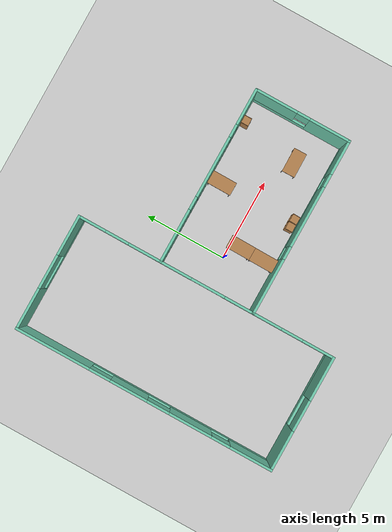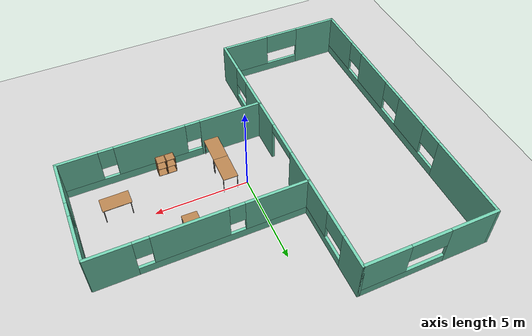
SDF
<sdf version="1.6">
 <world name="default">
  <model name="suelo_new">
   <static>1</static>
   <link name="link">
    <collision name="collision">
     <geometry><plane><normal>0 0 1</normal><size>100 100</size></plane></geometry>
     <surface><friction><ode><mu>100</mu><mu2>50</mu2></ode></friction></surface>
    </collision>
    <visual name="visual">
     <cast_shadows>0</cast_shadows>
     <geometry><plane><normal>0 0 1</normal><size>100 100</size></plane></geometry>
     <material>
      <script>
       <uri>model://suelo_new/materials/scripts</uri>
       <uri>model://suelo_new/materials/textures</uri>
       <name>suelo_new/Diffuse</name>
      </script>
     </material>
    </visual>
   </link>
   <pose>0.210877 -0.017639 0 0 -0 0</pose>
  </model>
  <model name="EnvA">
   <pose>-0.09926 0.078713 0 0 -0 0</pose>
   <link name="Wall_17">
    <pose>-8.99259 0 0 0 -0 -1.5708</pose>
    <visual name="Wall_17_Visual_0">
     <pose>-5.7893 0 1.25 0 -0 0</pose>
     <geometry><box><size>4.67141 0.15 2.5</size></box></geometry>
     <material>
      <script><uri>file://media/materials/scripts/gazebo.material</uri><name>Gazebo/Grey</name></script>
      <ambient>0.435294 0.796078 0.67451 1</ambient>
     </material>
     <meta><layer>0</layer></meta>
    </visual>
    <collision name="Wall_17_Collision_0">
     <geometry><box><size>4.67141 0.15 2.5</size></box></geometry>
     <pose>-5.7893 0 1.25 0 -0 0</pose>
    </collision>
    <visual name="Wall_17_Visual_1">
     <pose>2.3357 0 0.25 0 -0 0</pose>
     <geometry><box><size>11.5786 0.15 0.5</size></box></geometry>
     <material>
      <script><uri>file://media/materials/scripts/gazebo.material</uri><name>Gazebo/Grey</name></script>
      <ambient>0.435294 0.796078 0.67451 1</ambient>
     </material>
     <meta><layer>0</layer></meta>
    </visual>
    <collision name="Wall_17_Collision_1">
     <geometry><box><size>11.5786 0.15 0.5</size></box></geometry>
     <pose>2.3357 0 0.25 0 -0 0</pose>
    </collision>
    <visual name="Wall_17_Visual_2">
     <pose>-0.970133 0 1.5 0 -0 0</pose>
     <geometry><box><size>2.31508 0.15 2</size></box></geometry>
     <material>
      <script><uri>file://media/materials/scripts/gazebo.material</uri><name>Gazebo/Grey</name></script>
      <ambient>0.435294 0.796078 0.67451 1</ambient>
     </material>
     <meta><layer>0</layer></meta>
    </visual>
    <collision name="Wall_17_Collision_2">
     <geometry><box><size>2.31508 0.15 2</size></box></geometry>
     <pose>-0.970133 0 1.5 0 -0 0</pose>
    </collision>
    <visual name="Wall_17_Visual_3">
     <pose>2.93383 0 1.5 0 -0 0</pose>
     <geometry><box><size>2.67918 0.15 2</size></box></geometry>
     <material>
      <script><uri>file://media/materials/scripts/gazebo.material</uri><name>Gazebo/Grey</name></script>
      <ambient>0.435294 0.796078 0.67451 1</ambient>
     </material>
     <meta><layer>0</layer></meta>
    </visual>
    <collision name="Wall_17_Collision_3">
     <geometry><box><size>2.67918 0.15 2</size></box></geometry>
     <pose>2.93383 0 1.5 0 -0 0</pose>
    </collision>
    <visual name="Wall_17_Visual_4">
     <pose>6.78126 0 1.5 0 -0 0</pose>
     <geometry><box><size>2.68748 0.15 2</size></box></geometry>
     <material>
      <script><uri>file://media/materials/scripts/gazebo.material</uri><name>Gazebo/Grey</name></script>
      <ambient>0.435294 0.796078 0.67451 1</ambient>
     </material>
     <meta><layer>0</layer></meta>
    </visual>
    <collision name="Wall_17_Collision_4">
     <geometry><box><size>2.68748 0.15 2</size></box></geometry>
     <pose>6.78126 0 1.5 0 -0 0</pose>
    </collision>
    <visual name="Wall_17_Visual_5">
     <pose>-2.79063 0 1.9 0 -0 0</pose>
     <geometry><box><size>1.32592 0.15 1.2</size></box></geometry>
     <material>
      <script><uri>file://media/materials/scripts/gazebo.material</uri><name>Gazebo/Grey</name></script>
      <ambient>0.435294 0.796078 0.67451 1</ambient>
     </material>
     <meta><layer>0</layer></meta>
    </visual>
    <collision name="Wall_17_Collision_5">
     <geometry><box><size>1.32592 0.15 1.2</size></box></geometry>
     <pose>-2.79063 0 1.9 0 -0 0</pose>
    </collision>
    <visual name="Wall_17_Visual_6">
     <pose>0.890824 0 1.9 0 -0 0</pose>
     <geometry><box><size>1.40683 0.15 1.2</size></box></geometry>
     <material>
      <script><uri>file://media/materials/scripts/gazebo.material</uri><name>Gazebo/Grey</name></script>
      <ambient>0.435294 0.796078 0.67451 1</ambient>
     </material>
     <meta><layer>0</layer></meta>
    </visual>
    <collision name="Wall_17_Collision_6">
     <geometry><box><size>1.40683 0.15 1.2</size></box></geometry>
     <pose>0.890824 0 1.9 0 -0 0</pose>
    </collision>
    <visual name="Wall_17_Visual_7">
     <pose>4.85547 0 1.9 0 -0 0</pose>
     <geometry><box><size>1.1641 0.15 1.2</size></box></geometry>
     <material>
      <script><uri>file://media/materials/scripts/gazebo.material</uri><name>Gazebo/Grey</name></script>
      <ambient>0.435294 0.796078 0.67451 1</ambient>
     </material>
     <meta><layer>0</layer></meta>
    </visual>
    <collision name="Wall_17_Collision_7">
     <geometry><box><size>1.1641 0.15 1.2</size></box></geometry>
     <pose>4.85547 0 1.9 0 -0 0</pose>
    </collision>
   </link>
   <link name="Wall_19">
    <pose>-5.44259 8.05 0 0 -0 0</pose>
    <visual name="Wall_19_Visual_0">
     <pose>-2.31142 0 1.25 0 -0 0</pose>
     <geometry><box><size>2.62715 0.15 2.5</size></box></geometry>
     <material>
      <script><uri>file://media/materials/scripts/gazebo.material</uri><name>Gazebo/Grey</name></script>
      <ambient>0.435294 0.796078 0.67451 1</ambient>
     </material>
     <meta><layer>0</layer></meta>
    </visual>
    <collision name="Wall_19_Collision_0">
     <geometry><box><size>2.62715 0.15 2.5</size></box></geometry>
     <pose>-2.31142 0 1.25 0 -0 0</pose>
    </collision>
    <visual name="Wall_19_Visual_1">
     <pose>1.31358 0 0.25 0 -0 0</pose>
     <geometry><box><size>4.62285 0.15 0.5</size></box></geometry>
     <material>
      <script><uri>file://media/materials/scripts/gazebo.material</uri><name>Gazebo/Grey</name></script>
      <ambient>0.435294 0.796078 0.67451 1</ambient>
     </material>
     <meta><layer>0</layer></meta>
    </visual>
    <collision name="Wall_19_Collision_1">
     <geometry><box><size>4.62285 0.15 0.5</size></box></geometry>
     <pose>1.31358 0 0.25 0 -0 0</pose>
    </collision>
    <visual name="Wall_19_Visual_2">
     <pose>2.36087 0 1.5 0 -0 0</pose>
     <geometry><box><size>2.52827 0.15 2</size></box></geometry>
     <material>
      <script><uri>file://media/materials/scripts/gazebo.material</uri><name>Gazebo/Grey</name></script>
      <ambient>0.435294 0.796078 0.67451 1</ambient>
     </material>
     <meta><layer>0</layer></meta>
    </visual>
    <collision name="Wall_19_Collision_2">
     <geometry><box><size>2.52827 0.15 2</size></box></geometry>
     <pose>2.36087 0 1.5 0 -0 0</pose>
    </collision>
    <visual name="Wall_19_Visual_3">
     <pose>0.049443 0 1.9 0 -0 0</pose>
     <geometry><box><size>2.09458 0.15 1.2</size></box></geometry>
     <material>
      <script><uri>file://media/materials/scripts/gazebo.material</uri><name>Gazebo/Grey</name></script>
      <ambient>0.435294 0.796078 0.67451 1</ambient>
     </material>
     <meta><layer>0</layer></meta>
    </visual>
    <collision name="Wall_19_Collision_3">
     <geometry><box><size>2.09458 0.15 1.2</size></box></geometry>
     <pose>0.049443 0 1.9 0 -0 0</pose>
    </collision>
   </link>
   <link name="Wall_20">
    <pose>-1.89259 5.5 0 0 -0 -1.5708</pose>
    <visual name="Wall_20_Visual_0">
     <pose>-1.7457 0 1.25 0 -0 0</pose>
     <geometry><box><size>1.7586 0.15 2.5</size></box></geometry>
     <material>
      <script><uri>file://media/materials/scripts/gazebo.material</uri><name>Gazebo/Grey</name></script>
      <ambient>0.435294 0.796078 0.67451 1</ambient>
     </material>
     <meta><layer>0</layer></meta>
    </visual>
    <collision name="Wall_20_Collision_0">
     <geometry><box><size>1.7586 0.15 2.5</size></box></geometry>
     <pose>-1.7457 0 1.25 0 -0 0</pose>
    </collision>
    <visual name="Wall_20_Visual_1">
     <pose>0.879302 0 0.25 0 -0 0</pose>
     <geometry><box><size>3.4914 0.15 0.5</size></box></geometry>
     <material>
      <script><uri>file://media/materials/scripts/gazebo.material</uri><name>Gazebo/Grey</name></script>
      <ambient>0.435294 0.796078 0.67451 1</ambient>
     </material>
     <meta><layer>0</layer></meta>
    </visual>
    <collision name="Wall_20_Collision_1">
     <geometry><box><size>3.4914 0.15 0.5</size></box></geometry>
     <pose>0.879302 0 0.25 0 -0 0</pose>
    </collision>
    <visual name="Wall_20_Visual_2">
     <pose>1.60295 0 1.5 0 -0 0</pose>
     <geometry><box><size>2.04411 0.15 2</size></box></geometry>
     <material>
      <script><uri>file://media/materials/scripts/gazebo.material</uri><name>Gazebo/Grey</name></script>
      <ambient>0.435294 0.796078 0.67451 1</ambient>
     </material>
     <meta><layer>0</layer></meta>
    </visual>
    <collision name="Wall_20_Collision_2">
     <geometry><box><size>2.04411 0.15 2</size></box></geometry>
     <pose>1.60295 0 1.5 0 -0 0</pose>
    </collision>
    <visual name="Wall_20_Visual_3">
     <pose>-0.142752 0 1.9 0 -0 0</pose>
     <geometry><box><size>1.44729 0.15 1.2</size></box></geometry>
     <material>
      <script><uri>file://media/materials/scripts/gazebo.material</uri><name>Gazebo/Grey</name></script>
      <ambient>0.435294 0.796078 0.67451 1</ambient>
     </material>
     <meta><layer>0</layer></meta>
    </visual>
    <collision name="Wall_20_Collision_3">
     <geometry><box><size>1.44729 0.15 1.2</size></box></geometry>
     <pose>-0.142752 0 1.9 0 -0 0</pose>
    </collision>
   </link>
   <link name="Wall_27">
    <pose>3.53241 2.9 0 0 -0 3.14159</pose>
    <visual name="Wall_27_Visual_0">
     <pose>-4.37351 0 1.25 0 -0 0</pose>
     <geometry><box><size>2.25298 0.15 2.5</size></box></geometry>
     <material>
      <script><uri>file://media/materials/scripts/gazebo.material</uri><name>Gazebo/Grey</name></script>
      <ambient>0.435294 0.796078 0.67451 1</ambient>
     </material>
     <meta><layer>0</layer></meta>
    </visual>
    <collision name="Wall_27_Collision_0">
     <geometry><box><size>2.25298 0.15 2.5</size></box></geometry>
     <pose>-4.37351 0 1.25 0 -0 0</pose>
    </collision>
    <visual name="Wall_27_Visual_1">
     <pose>1.12649 0 0.25 0 -0 0</pose>
     <geometry><box><size>8.74702 0.15 0.5</size></box></geometry>
     <material>
      <script><uri>file://media/materials/scripts/gazebo.material</uri><name>Gazebo/Grey</name></script>
      <ambient>0.435294 0.796078 0.67451 1</ambient>
     </material>
     <meta><layer>0</layer></meta>
    </visual>
    <collision name="Wall_27_Collision_1">
     <geometry><box><size>8.74702 0.15 0.5</size></box></geometry>
     <pose>1.12649 0 0.25 0 -0 0</pose>
    </collision>
    <visual name="Wall_27_Visual_2">
     <pose>-0.561276 0 1.5 0 -0 0</pose>
     <geometry><box><size>3.77148 0.15 2</size></box></geometry>
     <material>
      <script><uri>file://media/materials/scripts/gazebo.material</uri><name>Gazebo/Grey</name></script>
      <ambient>0.435294 0.796078 0.67451 1</ambient>
     </material>
     <meta><layer>0</layer></meta>
    </visual>
    <collision name="Wall_27_Collision_2">
     <geometry><box><size>3.77148 0.15 2</size></box></geometry>
     <pose>-0.561276 0 1.5 0 -0 0</pose>
    </collision>
    <visual name="Wall_27_Visual_3">
     <pose>3.81223 0 1.5 0 -0 0</pose>
     <geometry><box><size>3.37554 0.15 2</size></box></geometry>
     <material>
      <script><uri>file://media/materials/scripts/gazebo.material</uri><name>Gazebo/Grey</name></script>
      <ambient>0.435294 0.796078 0.67451 1</ambient>
     </material>
     <meta><layer>0</layer></meta>
    </visual>
    <collision name="Wall_27_Collision_3">
     <geometry><box><size>3.37554 0.15 2</size></box></geometry>
     <pose>3.81223 0 1.5 0 -0 0</pose>
    </collision>
    <visual name="Wall_27_Visual_4">
     <pose>-2.84702 0 1.9 0 -0 0</pose>
     <geometry><box><size>0.8 0.15 1.2</size></box></geometry>
     <material>
      <script><uri>file://media/materials/scripts/gazebo.material</uri><name>Gazebo/Grey</name></script>
      <ambient>0.435294 0.796078 0.67451 1</ambient>
     </material>
     <meta><layer>0</layer></meta>
    </visual>
    <collision name="Wall_27_Collision_4">
     <geometry><box><size>0.8 0.15 1.2</size></box></geometry>
     <pose>-2.84702 0 1.9 0 -0 0</pose>
    </collision>
    <visual name="Wall_27_Visual_5">
     <pose>1.72446 0 1.9 0 -0 0</pose>
     <geometry><box><size>0.8 0.15 1.2</size></box></geometry>
     <material>
      <script><uri>file://media/materials/scripts/gazebo.material</uri><name>Gazebo/Grey</name></script>
      <ambient>0.435294 0.796078 0.67451 1</ambient>
     </material>
     <meta><layer>0</layer></meta>
    </visual>
    <collision name="Wall_27_Collision_5">
     <geometry><box><size>0.8 0.15 1.2</size></box></geometry>
     <pose>1.72446 0 1.9 0 -0 0</pose>
    </collision>
   </link>
   <link name="Wall_30">
    <pose>-5.44259 -8.05 0 0 -0 0</pose>
    <visual name="Wall_30_Visual_0">
     <pose>-2.35188 0 1.25 0 -0 0</pose>
     <geometry><box><size>2.54624 0.15 2.5</size></box></geometry>
     <material>
      <script><uri>file://media/materials/scripts/gazebo.material</uri><name>Gazebo/Grey</name></script>
      <ambient>0.435294 0.796078 0.67451 1</ambient>
     </material>
     <meta><layer>0</layer></meta>
    </visual>
    <collision name="Wall_30_Collision_0">
     <geometry><box><size>2.54624 0.15 2.5</size></box></geometry>
     <pose>-2.35188 0 1.25 0 -0 0</pose>
    </collision>
    <visual name="Wall_30_Visual_1">
     <pose>1.27312 0 0.25 0 -0 0</pose>
     <geometry><box><size>4.70376 0.15 0.5</size></box></geometry>
     <material>
      <script><uri>file://media/materials/scripts/gazebo.material</uri><name>Gazebo/Grey</name></script>
      <ambient>0.435294 0.796078 0.67451 1</ambient>
     </material>
     <meta><layer>0</layer></meta>
    </visual>
    <collision name="Wall_30_Collision_1">
     <geometry><box><size>4.70376 0.15 0.5</size></box></geometry>
     <pose>1.27312 0 0.25 0 -0 0</pose>
    </collision>
    <visual name="Wall_30_Visual_2">
     <pose>2.2395 0 1.5 0 -0 0</pose>
     <geometry><box><size>2.771 0.15 2</size></box></geometry>
     <material>
      <script><uri>file://media/materials/scripts/gazebo.material</uri><name>Gazebo/Grey</name></script>
      <ambient>0.435294 0.796078 0.67451 1</ambient>
     </material>
     <meta><layer>0</layer></meta>
    </visual>
    <collision name="Wall_30_Collision_2">
     <geometry><box><size>2.771 0.15 2</size></box></geometry>
     <pose>2.2395 0 1.5 0 -0 0</pose>
    </collision>
    <visual name="Wall_30_Visual_3">
     <pose>-0.11238 0 1.9 0 -0 0</pose>
     <geometry><box><size>1.93276 0.15 1.2</size></box></geometry>
     <material>
      <script><uri>file://media/materials/scripts/gazebo.material</uri><name>Gazebo/Grey</name></script>
      <ambient>0.435294 0.796078 0.67451 1</ambient>
     </material>
     <meta><layer>0</layer></meta>
    </visual>
    <collision name="Wall_30_Collision_3">
     <geometry><box><size>1.93276 0.15 1.2</size></box></geometry>
     <pose>-0.11238 0 1.9 0 -0 0</pose>
    </collision>
   </link>
   <link name="Wall_34">
    <pose>3.56759 -2.98503 0 0 -0 0</pose>
    <visual name="Wall_34_Visual_0">
     <pose>-3.76914 0 1.25 0 -0 0</pose>
     <geometry><box><size>3.46172 0.15 2.5</size></box></geometry>
     <material>
      <script><uri>file://media/materials/scripts/gazebo.material</uri><name>Gazebo/Grey</name></script>
      <ambient>0.435294 0.796078 0.67451 1</ambient>
     </material>
     <meta><layer>0</layer></meta>
    </visual>
    <collision name="Wall_34_Collision_0">
     <geometry><box><size>3.46172 0.15 2.5</size></box></geometry>
     <pose>-3.76914 0 1.25 0 -0 0</pose>
    </collision>
    <visual name="Wall_34_Visual_1">
     <pose>1.73086 0 0.25 0 -0 0</pose>
     <geometry><box><size>7.53828 0.15 0.5</size></box></geometry>
     <material>
      <script><uri>file://media/materials/scripts/gazebo.material</uri><name>Gazebo/Grey</name></script>
      <ambient>0.435294 0.796078 0.67451 1</ambient>
     </material>
     <meta><layer>0</layer></meta>
    </visual>
    <collision name="Wall_34_Collision_1">
     <geometry><box><size>7.53828 0.15 0.5</size></box></geometry>
     <pose>1.73086 0 0.25 0 -0 0</pose>
    </collision>
    <visual name="Wall_34_Visual_2">
     <pose>0.647464 0 1.5 0 -0 0</pose>
     <geometry><box><size>3.77148 0.15 2</size></box></geometry>
     <material>
      <script><uri>file://media/materials/scripts/gazebo.material</uri><name>Gazebo/Grey</name></script>
      <ambient>0.435294 0.796078 0.67451 1</ambient>
     </material>
     <meta><layer>0</layer></meta>
    </visual>
    <collision name="Wall_34_Collision_2">
     <geometry><box><size>3.77148 0.15 2</size></box></geometry>
     <pose>0.647464 0 1.5 0 -0 0</pose>
    </collision>
    <visual name="Wall_34_Visual_3">
     <pose>4.4166 0 1.5 0 -0 0</pose>
     <geometry><box><size>2.1668 0.15 2</size></box></geometry>
     <material>
      <script><uri>file://media/materials/scripts/gazebo.material</uri><name>Gazebo/Grey</name></script>
      <ambient>0.435294 0.796078 0.67451 1</ambient>
     </material>
     <meta><layer>0</layer></meta>
    </visual>
    <collision name="Wall_34_Collision_3">
     <geometry><box><size>2.1668 0.15 2</size></box></geometry>
     <pose>4.4166 0 1.5 0 -0 0</pose>
    </collision>
    <visual name="Wall_34_Visual_4">
     <pose>-1.63828 0 1.9 0 -0 0</pose>
     <geometry><box><size>0.8 0.15 1.2</size></box></geometry>
     <material>
      <script><uri>file://media/materials/scripts/gazebo.material</uri><name>Gazebo/Grey</name></script>
      <ambient>0.435294 0.796078 0.67451 1</ambient>
     </material>
     <meta><layer>0</layer></meta>
    </visual>
    <collision name="Wall_34_Collision_4">
     <geometry><box><size>0.8 0.15 1.2</size></box></geometry>
     <pose>-1.63828 0 1.9 0 -0 0</pose>
    </collision>
    <visual name="Wall_34_Visual_5">
     <pose>2.9332 0 1.9 0 -0 0</pose>
     <geometry><box><size>0.8 0.15 1.2</size></box></geometry>
     <material>
      <script><uri>file://media/materials/scripts/gazebo.material</uri><name>Gazebo/Grey</name></script>
      <ambient>0.435294 0.796078 0.67451 1</ambient>
     </material>
     <meta><layer>0</layer></meta>
    </visual>
    <collision name="Wall_34_Collision_5">
     <geometry><box><size>0.8 0.15 1.2</size></box></geometry>
     <pose>2.9332 0 1.9 0 -0 0</pose>
    </collision>
   </link>
   <link name="Wall_45">
    <pose>-1.89259 -5.5 0 0 -0 1.5708</pose>
    <visual name="Wall_45_Visual_0">
     <pose>-1.60491 0 1.25 0 -0 0</pose>
     <geometry><box><size>2.04019 0.15 2.5</size></box></geometry>
     <material>
      <script><uri>file://media/materials/scripts/gazebo.material</uri><name>Gazebo/Grey</name></script>
      <ambient>0.435294 0.796078 0.67451 1</ambient>
     </material>
     <meta><layer>0</layer></meta>
    </visual>
    <collision name="Wall_45_Collision_0">
     <geometry><box><size>2.04019 0.15 2.5</size></box></geometry>
     <pose>-1.60491 0 1.25 0 -0 0</pose>
    </collision>
    <visual name="Wall_45_Visual_1">
     <pose>1.02009 0 0.25 0 -0 0</pose>
     <geometry><box><size>3.20981 0.15 0.5</size></box></geometry>
     <material>
      <script><uri>file://media/materials/scripts/gazebo.material</uri><name>Gazebo/Grey</name></script>
      <ambient>0.435294 0.796078 0.67451 1</ambient>
     </material>
     <meta><layer>0</layer></meta>
    </visual>
    <collision name="Wall_45_Collision_1">
     <geometry><box><size>3.20981 0.15 0.5</size></box></geometry>
     <pose>1.02009 0 0.25 0 -0 0</pose>
    </collision>
    <visual name="Wall_45_Visual_2">
     <pose>1.68306 0 1.5 0 -0 0</pose>
     <geometry><box><size>1.88389 0.15 2</size></box></geometry>
     <material>
      <script><uri>file://media/materials/scripts/gazebo.material</uri><name>Gazebo/Grey</name></script>
      <ambient>0.435294 0.796078 0.67451 1</ambient>
     </material>
     <meta><layer>0</layer></meta>
    </visual>
    <collision name="Wall_45_Collision_2">
     <geometry><box><size>1.88389 0.15 2</size></box></geometry>
     <pose>1.68306 0 1.5 0 -0 0</pose>
    </collision>
    <visual name="Wall_45_Visual_3">
     <pose>0.078152 0 1.9 0 -0 0</pose>
     <geometry><box><size>1.32592 0.15 1.2</size></box></geometry>
     <material>
      <script><uri>file://media/materials/scripts/gazebo.material</uri><name>Gazebo/Grey</name></script>
      <ambient>0.435294 0.796078 0.67451 1</ambient>
     </material>
     <meta><layer>0</layer></meta>
    </visual>
    <collision name="Wall_45_Collision_3">
     <geometry><box><size>1.32592 0.15 1.2</size></box></geometry>
     <pose>0.078152 0 1.9 0 -0 0</pose>
    </collision>
   </link>
   <link name="Wall_47">
    <pose>8.99259 -0.060028 0 0 -0 1.5708</pose>
    <visual name="Wall_47_Visual_0">
     <pose>-1.72096 0 1.25 0 -0 0</pose>
     <geometry><box><size>2.55809 0.15 2.5</size></box></geometry>
     <material>
      <script><uri>file://media/materials/scripts/gazebo.material</uri><name>Gazebo/Grey</name></script>
      <ambient>0.435294 0.796078 0.67451 1</ambient>
     </material>
     <meta><layer>0</layer></meta>
    </visual>
    <collision name="Wall_47_Collision_0">
     <geometry><box><size>2.55809 0.15 2.5</size></box></geometry>
     <pose>-1.72096 0 1.25 0 -0 0</pose>
    </collision>
    <visual name="Wall_47_Visual_1">
     <pose>1.27904 0 0.25 0 -0 0</pose>
     <geometry><box><size>3.44191 0.15 0.5</size></box></geometry>
     <material>
      <script><uri>file://media/materials/scripts/gazebo.material</uri><name>Gazebo/Grey</name></script>
      <ambient>0.435294 0.796078 0.67451 1</ambient>
     </material>
     <meta><layer>0</layer></meta>
    </visual>
    <collision name="Wall_47_Collision_1">
     <geometry><box><size>3.44191 0.15 0.5</size></box></geometry>
     <pose>1.27904 0 0.25 0 -0 0</pose>
    </collision>
    <visual name="Wall_47_Visual_2">
     <pose>1.67904 0 1.5 0 -0 0</pose>
     <geometry><box><size>2.64191 0.15 2</size></box></geometry>
     <material>
      <script><uri>file://media/materials/scripts/gazebo.material</uri><name>Gazebo/Grey</name></script>
      <ambient>0.435294 0.796078 0.67451 1</ambient>
     </material>
     <meta><layer>0</layer></meta>
    </visual>
    <collision name="Wall_47_Collision_2">
     <geometry><box><size>2.64191 0.15 2</size></box></geometry>
     <pose>1.67904 0 1.5 0 -0 0</pose>
    </collision>
    <visual name="Wall_47_Visual_3">
     <pose>-0.041911 0 1.9 0 -0 0</pose>
     <geometry><box><size>0.8 0.15 1.2</size></box></geometry>
     <material>
      <script><uri>file://media/materials/scripts/gazebo.material</uri><name>Gazebo/Grey</name></script>
      <ambient>0.435294 0.796078 0.67451 1</ambient>
     </material>
     <meta><layer>0</layer></meta>
    </visual>
    <collision name="Wall_47_Collision_3">
     <geometry><box><size>0.8 0.15 1.2</size></box></geometry>
     <pose>-0.041911 0 1.9 0 -0 0</pose>
    </collision>
   </link>
   <link name="Wall_49">
    <pose>-1.89259 -0.025 0 0 -0 1.5708</pose>
    <visual name="Wall_49_Visual_0">
     <pose>-2.06689 0 1.25 0 -0 0</pose>
     <geometry><box><size>1.86623 0.15 2.5</size></box></geometry>
     <material>
      <script><uri>file://media/materials/scripts/gazebo.material</uri><name>Gazebo/Grey</name></script>
      <ambient>0.435294 0.796078 0.67451 1</ambient>
     </material>
     <meta><layer>0</layer></meta>
    </visual>
    <collision name="Wall_49_Collision_0">
     <geometry><box><size>1.86623 0.15 2.5</size></box></geometry>
     <pose>-2.06689 0 1.25 0 -0 0</pose>
    </collision>
    <visual name="Wall_49_Visual_1">
     <pose>1.98995 0 1.25 0 -0 0</pose>
     <geometry><box><size>2.02011 0.15 2.5</size></box></geometry>
     <material>
      <script><uri>file://media/materials/scripts/gazebo.material</uri><name>Gazebo/Grey</name></script>
      <ambient>0.435294 0.796078 0.67451 1</ambient>
     </material>
     <meta><layer>0</layer></meta>
    </visual>
    <collision name="Wall_49_Collision_1">
     <geometry><box><size>2.02011 0.15 2.5</size></box></geometry>
     <pose>1.98995 0 1.25 0 -0 0</pose>
    </collision>
    <visual name="Wall_49_Visual_2">
     <pose>-0.07694 0 2.25 0 -0 0</pose>
     <geometry><box><size>2.11367 0.15 0.5</size></box></geometry>
     <material>
      <script><uri>file://media/materials/scripts/gazebo.material</uri><name>Gazebo/Grey</name></script>
      <ambient>0.435294 0.796078 0.67451 1</ambient>
     </material>
     <meta><layer>0</layer></meta>
    </visual>
    <collision name="Wall_49_Collision_2">
     <geometry><box><size>2.11367 0.15 0.5</size></box></geometry>
     <pose>-0.07694 0 2.25 0 -0 0</pose>
    </collision>
   </link>
   <static>1</static>
  </model>
  <model name="table">
   <static>1</static>
   <link name="link">
    <collision name="surface">
     <pose>0 0 1 0 -0 0</pose>
     <geometry><box><size>1.5 0.8 0.03</size></box></geometry>
     <surface><friction><ode><mu>0.6</mu><mu2>0.6</mu2></ode></friction></surface>
    </collision>
    <visual name="visual1">
     <pose>0 0 1 0 -0 0</pose>
     <geometry><box><size>1.5 0.8 0.03</size></box></geometry>
     <material>
      <script><uri>file://media/materials/scripts/gazebo.material</uri><name>Gazebo/Wood</name></script>
     </material>
    </visual>
    <collision name="front_left_leg">
     <pose>0.68 0.38 0.5 0 -0 0</pose>
     <geometry><cylinder><radius>0.02</radius><length>1</length></cylinder></geometry>
    </collision>
    <visual name="front_left_leg">
     <pose>0.68 0.38 0.5 0 -0 0</pose>
     <geometry><cylinder><radius>0.02</radius><length>1</length></cylinder></geometry>
     <material>
      <script><uri>file://media/materials/scripts/gazebo.material</uri><name>Gazebo/Grey</name></script>
     </material>
    </visual>
    <collision name="front_right_leg">
     <pose>0.68 -0.38 0.5 0 -0 0</pose>
     <geometry><cylinder><radius>0.02</radius><length>1</length></cylinder></geometry>
    </collision>
    <visual name="front_right_leg">
     <pose>0.68 -0.38 0.5 0 -0 0</pose>
     <geometry><cylinder><radius>0.02</radius><length>1</length></cylinder></geometry>
     <material>
      <script><uri>file://media/materials/scripts/gazebo.material</uri><name>Gazebo/Grey</name></script>
     </material>
    </visual>
    <collision name="back_right_leg">
     <pose>-0.68 -0.38 0.5 0 -0 0</pose>
     <geometry><cylinder><radius>0.02</radius><length>1</length></cylinder></geometry>
    </collision>
    <visual name="back_right_leg">
     <pose>-0.68 -0.38 0.5 0 -0 0</pose>
     <geometry><cylinder><radius>0.02</radius><length>1</length></cylinder></geometry>
     <material>
      <script><uri>file://media/materials/scripts/gazebo.material</uri><name>Gazebo/Grey</name></script>
     </material>
    </visual>
    <collision name="back_left_leg">
     <pose>-0.68 0.38 0.5 0 -0 0</pose>
     <geometry><cylinder><radius>0.02</radius><length>1</length></cylinder></geometry>
    </collision>
    <visual name="back_left_leg">
     <pose>-0.68 0.38 0.5 0 -0 0</pose>
     <geometry><cylinder><radius>0.02</radius><length>1</length></cylinder></geometry>
     <material>
      <script><uri>file://media/materials/scripts/gazebo.material</uri><name>Gazebo/Grey</name></script>
     </material>
    </visual>
   </link>
   <pose>0.935446 -2.0806 0 0 -0 1.56084</pose>
  </model>
  <model name="table_clone">
   <static>1</static>
   <link name="link">
    <collision name="surface">
     <pose>0 0 1 0 -0 0</pose>
     <geometry><box><size>1.5 0.8 0.03</size></box></geometry>
     <surface><friction><ode><mu>0.6</mu><mu2>0.6</mu2></ode></friction></surface>
    </collision>
    <visual name="visual1">
     <pose>0 0 1 0 -0 0</pose>
     <geometry><box><size>1.5 0.8 0.03</size></box></geometry>
     <material>
      <script><uri>file://media/materials/scripts/gazebo.material</uri><name>Gazebo/Wood</name></script>
     </material>
    </visual>
    <collision name="front_left_leg">
     <pose>0.68 0.38 0.5 0 -0 0</pose>
     <geometry><cylinder><radius>0.02</radius><length>1</length></cylinder></geometry>
    </collision>
    <visual name="front_left_leg">
     <pose>0.68 0.38 0.5 0 -0 0</pose>
     <geometry><cylinder><radius>0.02</radius><length>1</length></cylinder></geometry>
     <material>
      <script><uri>file://media/materials/scripts/gazebo.material</uri><name>Gazebo/Grey</name></script>
     </material>
    </visual>
    <collision name="front_right_leg">
     <pose>0.68 -0.38 0.5 0 -0 0</pose>
     <geometry><cylinder><radius>0.02</radius><length>1</length></cylinder></geometry>
    </collision>
    <visual name="front_right_leg">
     <pose>0.68 -0.38 0.5 0 -0 0</pose>
     <geometry><cylinder><radius>0.02</radius><length>1</length></cylinder></geometry>
     <material>
      <script><uri>file://media/materials/scripts/gazebo.material</uri><name>Gazebo/Grey</name></script>
     </material>
    </visual>
    <collision name="back_right_leg">
     <pose>-0.68 -0.38 0.5 0 -0 0</pose>
     <geometry><cylinder><radius>0.02</radius><length>1</length></cylinder></geometry>
    </collision>
    <visual name="back_right_leg">
     <pose>-0.68 -0.38 0.5 0 -0 0</pose>
     <geometry><cylinder><radius>0.02</radius><length>1</length></cylinder></geometry>
     <material>
      <script><uri>file://media/materials/scripts/gazebo.material</uri><name>Gazebo/Grey</name></script>
     </material>
    </visual>
    <collision name="back_left_leg">
     <pose>-0.68 0.38 0.5 0 -0 0</pose>
     <geometry><cylinder><radius>0.02</radius><length>1</length></cylinder></geometry>
    </collision>
    <visual name="back_left_leg">
     <pose>-0.68 0.38 0.5 0 -0 0</pose>
     <geometry><cylinder><radius>0.02</radius><length>1</length></cylinder></geometry>
     <material>
      <script><uri>file://media/materials/scripts/gazebo.material</uri><name>Gazebo/Grey</name></script>
     </material>
    </visual>
   </link>
   <pose>0.954915 -0.582595 0 0 -0 1.56084</pose>
  </model>
  <model name="table_clone_clone">
   <static>1</static>
   <link name="link">
    <collision name="surface">
     <pose>0 0 1 0 -0 0</pose>
     <geometry><box><size>1.5 0.8 0.03</size></box></geometry>
     <surface><friction><ode><mu>0.6</mu><mu2>0.6</mu2></ode></friction></surface>
    </collision>
    <visual name="visual1">
     <pose>0 0 1 0 -0 0</pose>
     <geometry><box><size>1.5 0.8 0.03</size></box></geometry>
     <material>
      <script><uri>file://media/materials/scripts/gazebo.material</uri><name>Gazebo/Wood</name></script>
     </material>
    </visual>
    <collision name="front_left_leg">
     <pose>0.68 0.38 0.5 0 -0 0</pose>
     <geometry><cylinder><radius>0.02</radius><length>1</length></cylinder></geometry>
    </collision>
    <visual name="front_left_leg">
     <pose>0.68 0.38 0.5 0 -0 0</pose>
     <geometry><cylinder><radius>0.02</radius><length>1</length></cylinder></geometry>
     <material>
      <script><uri>file://media/materials/scripts/gazebo.material</uri><name>Gazebo/Grey</name></script>
     </material>
    </visual>
    <collision name="front_right_leg">
     <pose>0.68 -0.38 0.5 0 -0 0</pose>
     <geometry><cylinder><radius>0.02</radius><length>1</length></cylinder></geometry>
    </collision>
    <visual name="front_right_leg">
     <pose>0.68 -0.38 0.5 0 -0 0</pose>
     <geometry><cylinder><radius>0.02</radius><length>1</length></cylinder></geometry>
     <material>
      <script><uri>file://media/materials/scripts/gazebo.material</uri><name>Gazebo/Grey</name></script>
     </material>
    </visual>
    <collision name="back_right_leg">
     <pose>-0.68 -0.38 0.5 0 -0 0</pose>
     <geometry><cylinder><radius>0.02</radius><length>1</length></cylinder></geometry>
    </collision>
    <visual name="back_right_leg">
     <pose>-0.68 -0.38 0.5 0 -0 0</pose>
     <geometry><cylinder><radius>0.02</radius><length>1</length></cylinder></geometry>
     <material>
      <script><uri>file://media/materials/scripts/gazebo.material</uri><name>Gazebo/Grey</name></script>
     </material>
    </visual>
    <collision name="back_left_leg">
     <pose>-0.68 0.38 0.5 0 -0 0</pose>
     <geometry><cylinder><radius>0.02</radius><length>1</length></cylinder></geometry>
    </collision>
    <visual name="back_left_leg">
     <pose>-0.68 0.38 0.5 0 -0 0</pose>
     <geometry><cylinder><radius>0.02</radius><length>1</length></cylinder></geometry>
     <material>
      <script><uri>file://media/materials/scripts/gazebo.material</uri><name>Gazebo/Grey</name></script>
     </material>
    </visual>
   </link>
   <pose>3.64772 2.15257 0 0 -0 1.56084</pose>
  </model>
  <model name="table_clone_clone_0_clone">
   <static>1</static>
   <link name="link">
    <collision name="surface">
     <pose>0 0 1 0 -0 0</pose>
     <geometry><box><size>1.5 0.8 0.03</size></box></geometry>
     <surface><friction><ode><mu>0.6</mu><mu2>0.6</mu2></ode></friction></surface>
    </collision>
    <visual name="visual1">
     <pose>0 0 1 0 -0 0</pose>
     <geometry><box><size>1.5 0.8 0.03</size></box></geometry>
     <material>
      <script><uri>file://media/materials/scripts/gazebo.material</uri><name>Gazebo/Wood</name></script>
     </material>
    </visual>
    <collision name="front_left_leg">
     <pose>0.68 0.38 0.5 0 -0 0</pose>
     <geometry><cylinder><radius>0.02</radius><length>1</length></cylinder></geometry>
    </collision>
    <visual name="front_left_leg">
     <pose>0.68 0.38 0.5 0 -0 0</pose>
     <geometry><cylinder><radius>0.02</radius><length>1</length></cylinder></geometry>
     <material>
      <script><uri>file://media/materials/scripts/gazebo.material</uri><name>Gazebo/Grey</name></script>
     </material>
    </visual>
    <collision name="front_right_leg">
     <pose>0.68 -0.38 0.5 0 -0 0</pose>
     <geometry><cylinder><radius>0.02</radius><length>1</length></cylinder></geometry>
    </collision>
    <visual name="front_right_leg">
     <pose>0.68 -0.38 0.5 0 -0 0</pose>
     <geometry><cylinder><radius>0.02</radius><length>1</length></cylinder></geometry>
     <material>
      <script><uri>file://media/materials/scripts/gazebo.material</uri><name>Gazebo/Grey</name></script>
     </material>
    </visual>
    <collision name="back_right_leg">
     <pose>-0.68 -0.38 0.5 0 -0 0</pose>
     <geometry><cylinder><radius>0.02</radius><length>1</length></cylinder></geometry>
    </collision>
    <visual name="back_right_leg">
     <pose>-0.68 -0.38 0.5 0 -0 0</pose>
     <geometry><cylinder><radius>0.02</radius><length>1</length></cylinder></geometry>
     <material>
      <script><uri>file://media/materials/scripts/gazebo.material</uri><name>Gazebo/Grey</name></script>
     </material>
    </visual>
    <collision name="back_left_leg">
     <pose>-0.68 0.38 0.5 0 -0 0</pose>
     <geometry><cylinder><radius>0.02</radius><length>1</length></cylinder></geometry>
    </collision>
    <visual name="back_left_leg">
     <pose>-0.68 0.38 0.5 0 -0 0</pose>
     <geometry><cylinder><radius>0.02</radius><length>1</length></cylinder></geometry>
     <material>
      <script><uri>file://media/materials/scripts/gazebo.material</uri><name>Gazebo/Grey</name></script>
     </material>
    </visual>
   </link>
   <pose>6.69355 -0.905261 -0.133705 0 0 -3.13123</pose>
  </model>
  <model name="cabinet_clone_1_clone">
   <static>1</static>
   <link name="cabinet_bottom_plate">
    <inertial>
     <pose>0 0 -1 0 -0 0</pose>
     <inertia><ixx>2.05</ixx><ixy>0</ixy><ixz>0</ixz><iyy>2.05</iyy><iyz>0</iyz><izz>2.05</izz></inertia>
     <mass>25</mass>
    </inertial>
    <collision name="cabinet_bottom_plate_geom">
     <pose>0 0 0.01 0 -0 0</pose>
     <geometry><box><size>0.45 0.45 0.02</size></box></geometry>
    </collision>
    <visual name="cabinet_bottom_plate_geom_visual">
     <pose>0 0 0.01 0 -0 0</pose>
     <geometry><box><size>0.45 0.45 0.02</size></box></geometry>
     <material>
      <script><uri>file://media/materials/scripts/gazebo.material</uri><name>Gazebo/Wood</name></script>
     </material>
    </visual>
    <collision name="cabinet_bottom_plate_geom_cabinet_back_plate">
     <pose>0.235 0 0.51 0 -0 0</pose>
     <geometry><box><size>0.02 0.45 1.02</size></box></geometry>
    </collision>
    <visual name="cabinet_bottom_plate_geom_cabinet_back_plate_visual">
     <pose>0.235 0 0.51 0 -0 0</pose>
     <geometry><box><size>0.02 0.45 1.02</size></box></geometry>
     <material>
      <script><uri>file://media/materials/scripts/gazebo.material</uri><name>Gazebo/Wood</name></script>
     </material>
    </visual>
    <collision name="cabinet_bottom_plate_geom_cabinet_left_plate">
     <pose>0 0.235 0.51 0 -0 0</pose>
     <geometry><box><size>0.45 0.02 1.02</size></box></geometry>
    </collision>
    <visual name="cabinet_bottom_plate_geom_cabinet_left_plate_visual">
     <pose>0 0.235 0.51 0 -0 0</pose>
     <geometry><box><size>0.45 0.02 1.02</size></box></geometry>
     <material>
      <script><uri>file://media/materials/scripts/gazebo.material</uri><name>Gazebo/Wood</name></script>
     </material>
    </visual>
    <collision name="cabinet_bottom_plate_geom_cabinet_middle_plate">
     <pose>0 0 0.51 0 -0 0</pose>
     <geometry><box><size>0.45 0.45 0.02</size></box></geometry>
    </collision>
    <visual name="cabinet_bottom_plate_geom_cabinet_middle_plate_visual">
     <pose>0 0 0.51 0 -0 0</pose>
     <geometry><box><size>0.45 0.45 0.02</size></box></geometry>
     <material>
      <script><uri>file://media/materials/scripts/gazebo.material</uri><name>Gazebo/Wood</name></script>
     </material>
    </visual>
    <collision name="cabinet_bottom_plate_geom_cabinet_right_plate">
     <pose>0 -0.235 0.51 0 -0 0</pose>
     <geometry><box><size>0.45 0.02 1.02</size></box></geometry>
    </collision>
    <visual name="cabinet_bottom_plate_geom_cabinet_right_plate_visual">
     <pose>0 -0.235 0.51 0 -0 0</pose>
     <geometry><box><size>0.45 0.02 1.02</size></box></geometry>
     <material>
      <script><uri>file://media/materials/scripts/gazebo.material</uri><name>Gazebo/Wood</name></script>
     </material>
    </visual>
    <collision name="cabinet_bottom_plate_geom_cabinet_top_plate">
     <pose>0 0 1.01 0 -0 0</pose>
     <geometry><box><size>0.45 0.45 0.02</size></box></geometry>
    </collision>
    <visual name="cabinet_bottom_plate_geom_cabinet_top_plate_visual">
     <pose>0 0 1.01 0 -0 0</pose>
     <geometry><box><size>0.45 0.45 0.02</size></box></geometry>
     <material>
      <script><uri>file://media/materials/scripts/gazebo.material</uri><name>Gazebo/Wood</name></script>
     </material>
    </visual>
   </link>
   <pose>3.36775 -2.49054 0 0 0 -1.5623</pose>
  </model>
  <model name="cabinet_clone_1_clone_0">
   <static>1</static>
   <link name="cabinet_bottom_plate">
    <inertial>
     <pose>0 0 -1 0 -0 0</pose>
     <inertia><ixx>2.05</ixx><ixy>0</ixy><ixz>0</ixz><iyy>2.05</iyy><iyz>0</iyz><izz>2.05</izz></inertia>
     <mass>25</mass>
    </inertial>
    <collision name="cabinet_bottom_plate_geom">
     <pose>0 0 0.01 0 -0 0</pose>
     <geometry><box><size>0.45 0.45 0.02</size></box></geometry>
    </collision>
    <visual name="cabinet_bottom_plate_geom_visual">
     <pose>0 0 0.01 0 -0 0</pose>
     <geometry><box><size>0.45 0.45 0.02</size></box></geometry>
     <material>
      <script><uri>file://media/materials/scripts/gazebo.material</uri><name>Gazebo/Wood</name></script>
     </material>
    </visual>
    <collision name="cabinet_bottom_plate_geom_cabinet_back_plate">
     <pose>0.235 0 0.51 0 -0 0</pose>
     <geometry><box><size>0.02 0.45 1.02</size></box></geometry>
    </collision>
    <visual name="cabinet_bottom_plate_geom_cabinet_back_plate_visual">
     <pose>0.235 0 0.51 0 -0 0</pose>
     <geometry><box><size>0.02 0.45 1.02</size></box></geometry>
     <material>
      <script><uri>file://media/materials/scripts/gazebo.material</uri><name>Gazebo/Wood</name></script>
     </material>
    </visual>
    <collision name="cabinet_bottom_plate_geom_cabinet_left_plate">
     <pose>0 0.235 0.51 0 -0 0</pose>
     <geometry><box><size>0.45 0.02 1.02</size></box></geometry>
    </collision>
    <visual name="cabinet_bottom_plate_geom_cabinet_left_plate_visual">
     <pose>0 0.235 0.51 0 -0 0</pose>
     <geometry><box><size>0.45 0.02 1.02</size></box></geometry>
     <material>
      <script><uri>file://media/materials/scripts/gazebo.material</uri><name>Gazebo/Wood</name></script>
     </material>
    </visual>
    <collision name="cabinet_bottom_plate_geom_cabinet_middle_plate">
     <pose>0 0 0.51 0 -0 0</pose>
     <geometry><box><size>0.45 0.45 0.02</size></box></geometry>
    </collision>
    <visual name="cabinet_bottom_plate_geom_cabinet_middle_plate_visual">
     <pose>0 0 0.51 0 -0 0</pose>
     <geometry><box><size>0.45 0.45 0.02</size></box></geometry>
     <material>
      <script><uri>file://media/materials/scripts/gazebo.material</uri><name>Gazebo/Wood</name></script>
     </material>
    </visual>
    <collision name="cabinet_bottom_plate_geom_cabinet_right_plate">
     <pose>0 -0.235 0.51 0 -0 0</pose>
     <geometry><box><size>0.45 0.02 1.02</size></box></geometry>
    </collision>
    <visual name="cabinet_bottom_plate_geom_cabinet_right_plate_visual">
     <pose>0 -0.235 0.51 0 -0 0</pose>
     <geometry><box><size>0.45 0.02 1.02</size></box></geometry>
     <material>
      <script><uri>file://media/materials/scripts/gazebo.material</uri><name>Gazebo/Wood</name></script>
     </material>
    </visual>
    <collision name="cabinet_bottom_plate_geom_cabinet_top_plate">
     <pose>0 0 1.01 0 -0 0</pose>
     <geometry><box><size>0.45 0.45 0.02</size></box></geometry>
    </collision>
    <visual name="cabinet_bottom_plate_geom_cabinet_top_plate_visual">
     <pose>0 0 1.01 0 -0 0</pose>
     <geometry><box><size>0.45 0.45 0.02</size></box></geometry>
     <material>
      <script><uri>file://media/materials/scripts/gazebo.material</uri><name>Gazebo/Wood</name></script>
     </material>
    </visual>
   </link>
   <pose>3.86158 -2.49354 0 0 0 -1.59932</pose>
  </model>
  <model name="cabinet_clone_1_clone_clone_clone">
   <static>1</static>
   <link name="cabinet_bottom_plate">
    <inertial>
     <pose>0 0 -1 0 -0 0</pose>
     <inertia><ixx>2.05</ixx><ixy>0</ixy><ixz>0</ixz><iyy>2.05</iyy><iyz>0</iyz><izz>2.05</izz></inertia>
     <mass>25</mass>
    </inertial>
    <collision name="cabinet_bottom_plate_geom">
     <pose>0 0 0.01 0 -0 0</pose>
     <geometry><box><size>0.45 0.45 0.02</size></box></geometry>
    </collision>
    <visual name="cabinet_bottom_plate_geom_visual">
     <pose>0 0 0.01 0 -0 0</pose>
     <geometry><box><size>0.45 0.45 0.02</size></box></geometry>
     <material>
      <script><uri>file://media/materials/scripts/gazebo.material</uri><name>Gazebo/Wood</name></script>
     </material>
    </visual>
    <collision name="cabinet_bottom_plate_geom_cabinet_back_plate">
     <pose>0.235 0 0.51 0 -0 0</pose>
     <geometry><box><size>0.02 0.45 1.02</size></box></geometry>
    </collision>
    <visual name="cabinet_bottom_plate_geom_cabinet_back_plate_visual">
     <pose>0.235 0 0.51 0 -0 0</pose>
     <geometry><box><size>0.02 0.45 1.02</size></box></geometry>
     <material>
      <script><uri>file://media/materials/scripts/gazebo.material</uri><name>Gazebo/Wood</name></script>
     </material>
    </visual>
    <collision name="cabinet_bottom_plate_geom_cabinet_left_plate">
     <pose>0 0.235 0.51 0 -0 0</pose>
     <geometry><box><size>0.45 0.02 1.02</size></box></geometry>
    </collision>
    <visual name="cabinet_bottom_plate_geom_cabinet_left_plate_visual">
     <pose>0 0.235 0.51 0 -0 0</pose>
     <geometry><box><size>0.45 0.02 1.02</size></box></geometry>
     <material>
      <script><uri>file://media/materials/scripts/gazebo.material</uri><name>Gazebo/Wood</name></script>
     </material>
    </visual>
    <collision name="cabinet_bottom_plate_geom_cabinet_middle_plate">
     <pose>0 0 0.51 0 -0 0</pose>
     <geometry><box><size>0.45 0.45 0.02</size></box></geometry>
    </collision>
    <visual name="cabinet_bottom_plate_geom_cabinet_middle_plate_visual">
     <pose>0 0 0.51 0 -0 0</pose>
     <geometry><box><size>0.45 0.45 0.02</size></box></geometry>
     <material>
      <script><uri>file://media/materials/scripts/gazebo.material</uri><name>Gazebo/Wood</name></script>
     </material>
    </visual>
    <collision name="cabinet_bottom_plate_geom_cabinet_right_plate">
     <pose>0 -0.235 0.51 0 -0 0</pose>
     <geometry><box><size>0.45 0.02 1.02</size></box></geometry>
    </collision>
    <visual name="cabinet_bottom_plate_geom_cabinet_right_plate_visual">
     <pose>0 -0.235 0.51 0 -0 0</pose>
     <geometry><box><size>0.45 0.02 1.02</size></box></geometry>
     <material>
      <script><uri>file://media/materials/scripts/gazebo.material</uri><name>Gazebo/Wood</name></script>
     </material>
    </visual>
    <collision name="cabinet_bottom_plate_geom_cabinet_top_plate">
     <pose>0 0 1.01 0 -0 0</pose>
     <geometry><box><size>0.45 0.45 0.02</size></box></geometry>
    </collision>
    <visual name="cabinet_bottom_plate_geom_cabinet_top_plate_visual">
     <pose>0 0 1.01 0 -0 0</pose>
     <geometry><box><size>0.45 0.45 0.02</size></box></geometry>
     <material>
      <script><uri>file://media/materials/scripts/gazebo.material</uri><name>Gazebo/Wood</name></script>
     </material>
    </visual>
   </link>
   <pose>7.44043 2.66208 0 0 -0 1.58306</pose>
  </model>
 </world>
</sdf>
